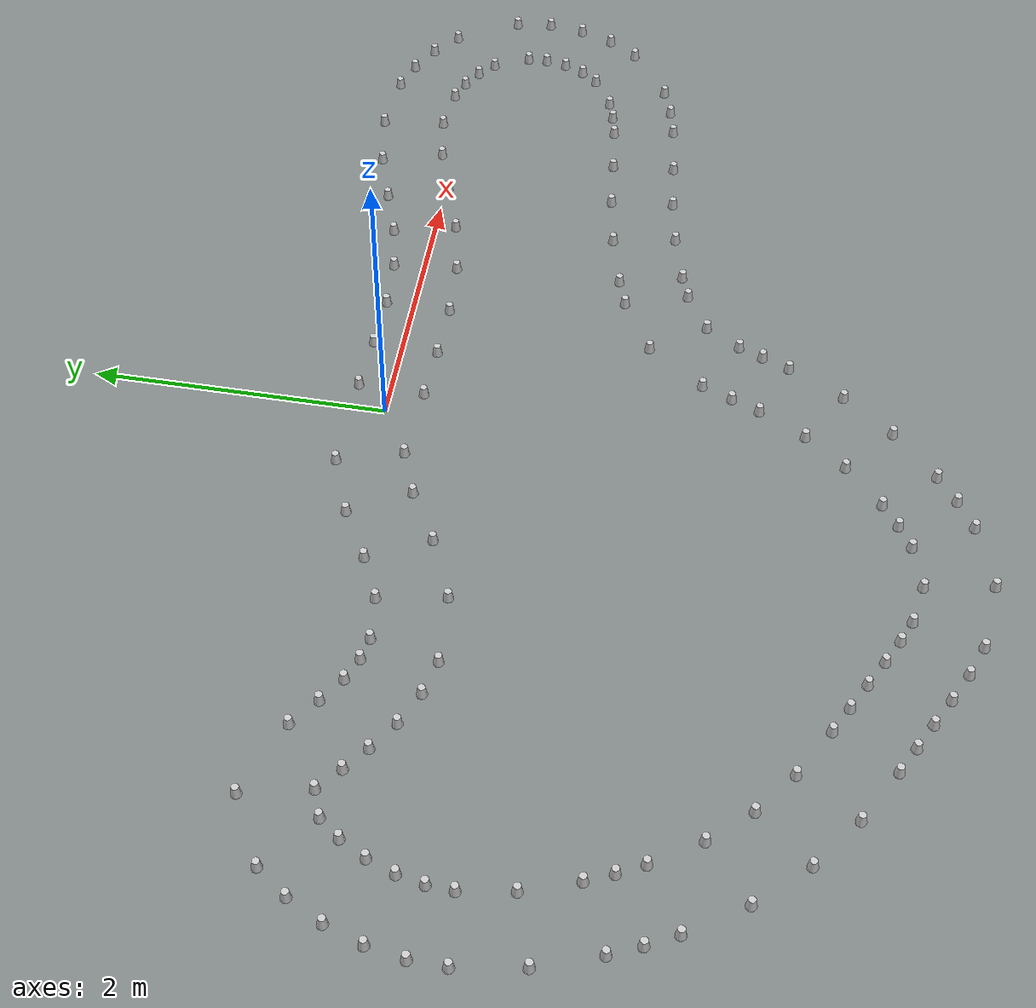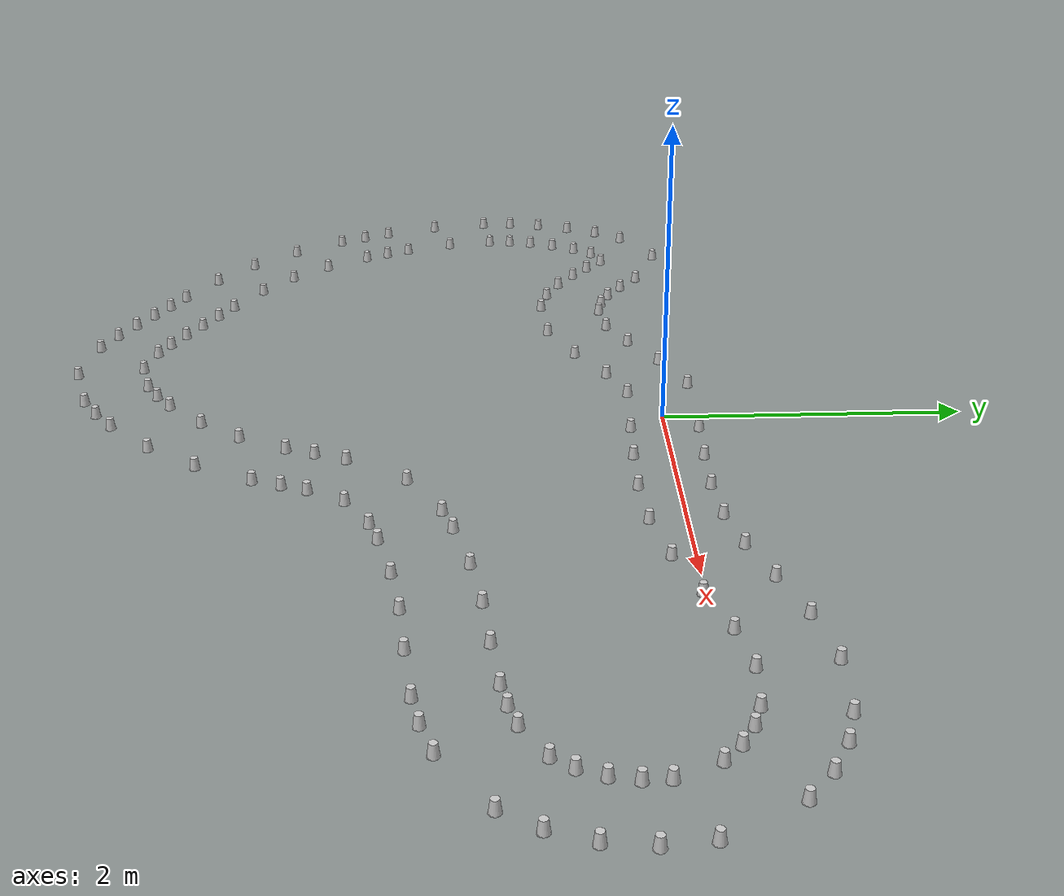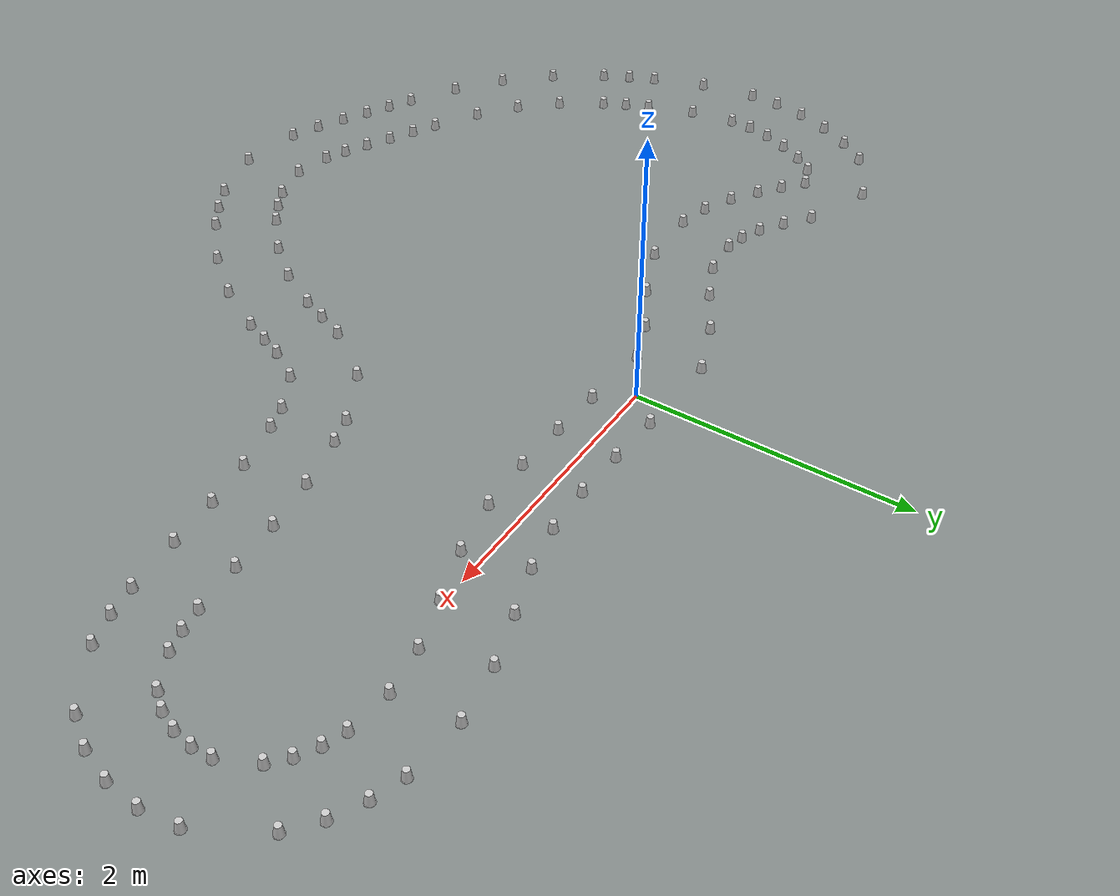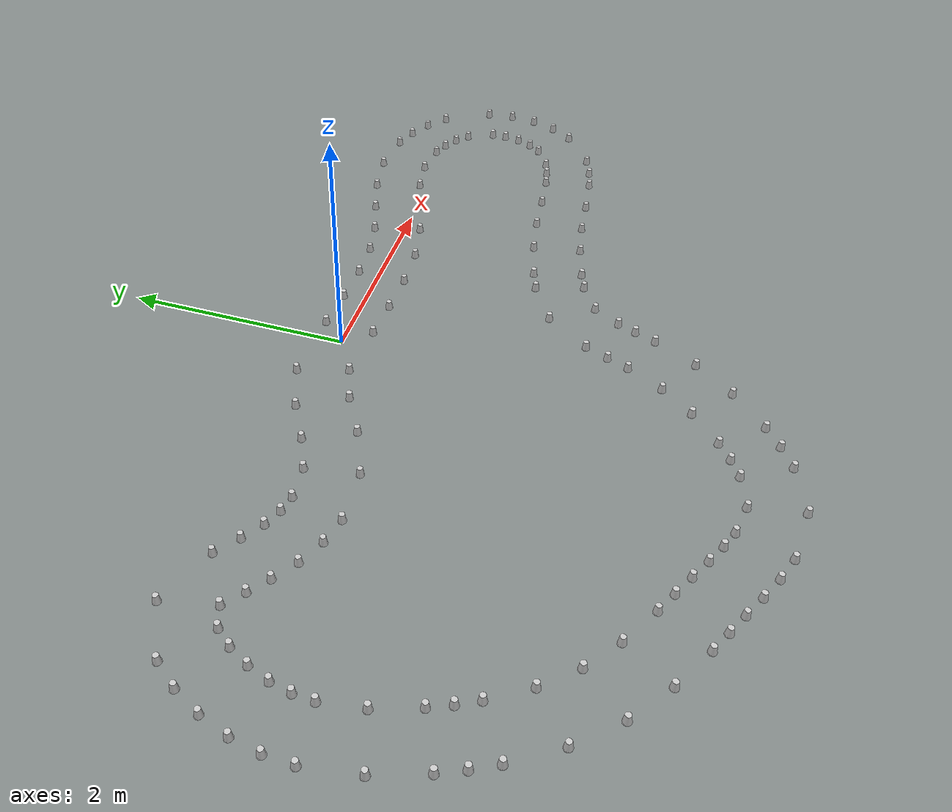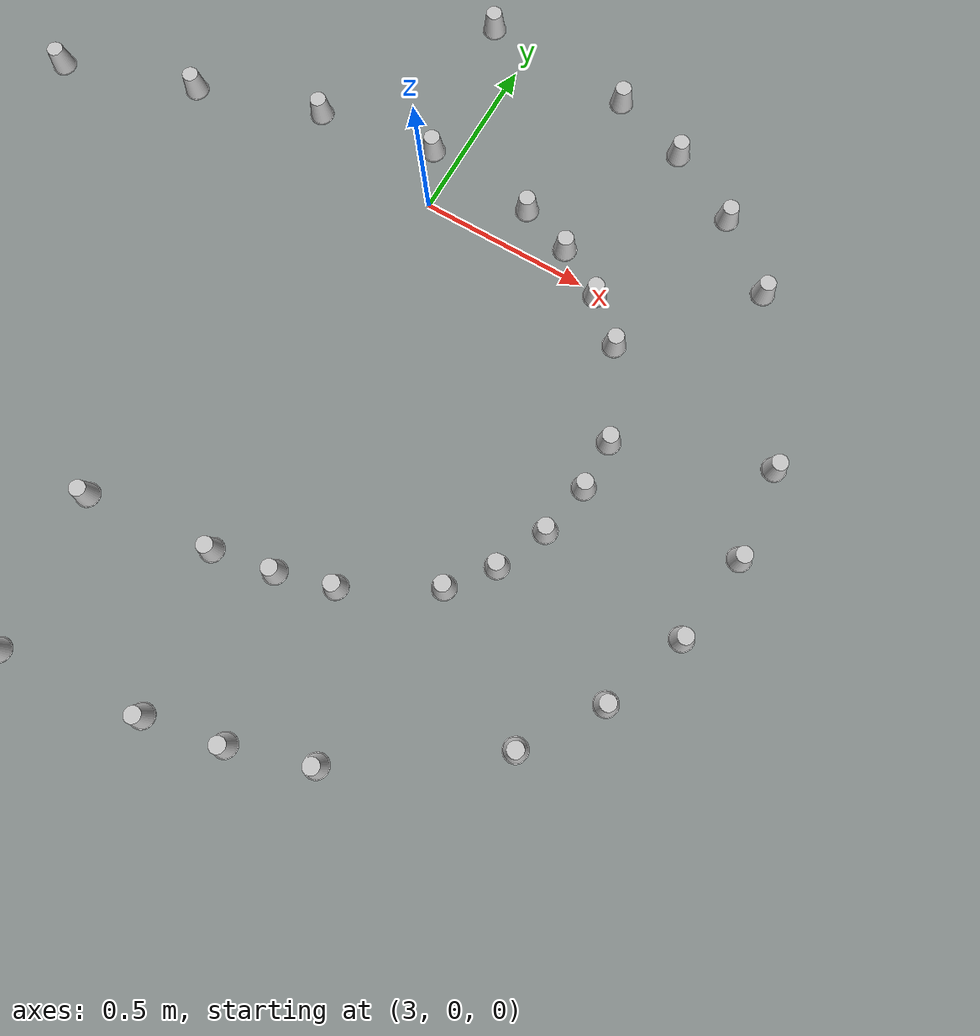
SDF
<?xml version='1.0' encoding='UTF-8'?>
<sdf version="1.4">
  <model name="some track">
    <include>
      <uri>model://cone_yellow</uri>
      <pose>0.18759496561683559 -0.2295577705024645 0 0 0 0</pose>
      <name>cone_right_0</name>
    </include>
    <include>
      <uri>model://cone_yellow</uri>
      <pose>0.5755406994430231 -0.24715566165775663 0 0 0 0</pose>
      <name>cone_right_1</name>
    </include>
    <include>
      <uri>model://cone_yellow</uri>
      <pose>0.9806962667492243 -0.2563478968572893 0 0 0 0</pose>
      <name>cone_right_2</name>
    </include>
    <include>
      <uri>model://cone_yellow</uri>
      <pose>1.3960445455198591 -0.23130570532452543 0 0 0 0</pose>
      <name>cone_right_3</name>
    </include>
    <include>
      <uri>model://cone_yellow</uri>
      <pose>1.8130392439849035 -0.14564734642981084 0 0 0 0</pose>
      <name>cone_right_4</name>
    </include>
    <include>
      <uri>model://cone_yellow</uri>
      <pose>2.2050073256570975 -0.01780907342128188 0 0 0 0</pose>
      <name>cone_right_5</name>
    </include>
    <include>
      <uri>model://cone_yellow</uri>
      <pose>2.572461905719061 0.09825327312814156 0 0 0 0</pose>
      <name>cone_right_6</name>
    </include>
    <include>
      <uri>model://cone_yellow</uri>
      <pose>2.921884154365821 0.15679220755745174 0 0 0 0</pose>
      <name>cone_right_7</name>
    </include>
    <include>
      <uri>model://cone_yellow</uri>
      <pose>3.253863643680333 0.12661593220568954 0 0 0 0</pose>
      <name>cone_right_8</name>
    </include>
    <include>
      <uri>model://cone_yellow</uri>
      <pose>3.4086567676691155 0.07257739082380055 0 0 0 0</pose>
      <name>cone_right_9</name>
    </include>
    <include>
      <uri>model://cone_yellow</uri>
      <pose>3.5510601446673378 -0.008771063536526486 0 0 0 0</pose>
      <name>cone_right_10</name>
    </include>
    <include>
      <uri>model://cone_yellow</uri>
      <pose>3.669706109846401 -0.11363125848110245 0 0 0 0</pose>
      <name>cone_right_11</name>
    </include>
    <include>
      <uri>model://cone_yellow</uri>
      <pose>3.7905768175519863 -0.3661469165338716 0 0 0 0</pose>
      <name>cone_right_12</name>
    </include>
    <include>
      <uri>model://cone_yellow</uri>
      <pose>3.7934662745545644 -0.5106587344032009 0 0 0 0</pose>
      <name>cone_right_13</name>
    </include>
    <include>
      <uri>model://cone_yellow</uri>
      <pose>3.7628093817284665 -0.6646845876896478 0 0 0 0</pose>
      <name>cone_right_14</name>
    </include>
    <include>
      <uri>model://cone_yellow</uri>
      <pose>3.6989022278244144 -0.8097610380385843 0 0 0 0</pose>
      <name>cone_right_15</name>
    </include>
    <include>
      <uri>model://cone_yellow</uri>
      <pose>3.607502140191656 -0.9266880431974815 0 0 0 0</pose>
      <name>cone_right_16</name>
    </include>
    <include>
      <uri>model://cone_yellow</uri>
      <pose>3.361550289316726 -1.0670637330290513 0 0 0 0</pose>
      <name>cone_right_17</name>
    </include>
    <include>
      <uri>model://cone_yellow</uri>
      <pose>3.2016362778648313 -1.1131931561299147 0 0 0 0</pose>
      <name>cone_right_18</name>
    </include>
    <include>
      <uri>model://cone_yellow</uri>
      <pose>3.0250245615061524 -1.1466501158364915 0 0 0 0</pose>
      <name>cone_right_19</name>
    </include>
    <include>
      <uri>model://cone_yellow</uri>
      <pose>2.653195892465553 -1.1886359233333474 0 0 0 0</pose>
      <name>cone_right_20</name>
    </include>
    <include>
      <uri>model://cone_yellow</uri>
      <pose>2.264742655169774 -1.226426585789559 0 0 0 0</pose>
      <name>cone_right_21</name>
    </include>
    <include>
      <uri>model://cone_yellow</uri>
      <pose>1.8642459210985531 -1.2919222984479573 0 0 0 0</pose>
      <name>cone_right_22</name>
    </include>
    <include>
      <uri>model://cone_yellow</uri>
      <pose>1.4585495346601527 -1.390364962683376 0 0 0 0</pose>
      <name>cone_right_23</name>
    </include>
    <include>
      <uri>model://cone_yellow</uri>
      <pose>1.2519391707382055 -1.456534247549639 0 0 0 0</pose>
      <name>cone_right_24</name>
    </include>
    <include>
      <uri>model://cone_yellow</uri>
      <pose>0.8530674147502446 -1.677472567146451 0 0 0 0</pose>
      <name>cone_right_25</name>
    </include>
    <include>
      <uri>model://cone_yellow</uri>
      <pose>0.5695348485648941 -2.0697618556441406 0 0 0 0</pose>
      <name>cone_right_26</name>
    </include>
    <include>
      <uri>model://cone_yellow</uri>
      <pose>0.48229228489300724 -2.2767508222730934 0 0 0 0</pose>
      <name>cone_right_27</name>
    </include>
    <include>
      <uri>model://cone_yellow</uri>
      <pose>0.4055245811403262 -2.467819084421946 0 0 0 0</pose>
      <name>cone_right_28</name>
    </include>
    <include>
      <uri>model://cone_yellow</uri>
      <pose>0.23409870842261024 -2.785852798613462 0 0 0 0</pose>
      <name>cone_right_29</name>
    </include>
    <include>
      <uri>model://cone_yellow</uri>
      <pose>0.014684555027909912 -3.0622947796933357 0 0 0 0</pose>
      <name>cone_right_30</name>
    </include>
    <include>
      <uri>model://cone_yellow</uri>
      <pose>-0.25761015906829404 -3.3106464889533944 0 0 0 0</pose>
      <name>cone_right_31</name>
    </include>
    <include>
      <uri>model://cone_yellow</uri>
      <pose>-0.4113365586119556 -3.4209531648550753 0 0 0 0</pose>
      <name>cone_right_32</name>
    </include>
    <include>
      <uri>model://cone_yellow</uri>
      <pose>-0.5685698978854075 -3.509587359585587 0 0 0 0</pose>
      <name>cone_right_33</name>
    </include>
    <include>
      <uri>model://cone_yellow</uri>
      <pose>-0.8672107307590486 -3.590306664515702 0 0 0 0</pose>
      <name>cone_right_34</name>
    </include>
    <include>
      <uri>model://cone_yellow</uri>
      <pose>-1.1407954211800826 -3.533884151213146 0 0 0 0</pose>
      <name>cone_right_35</name>
    </include>
    <include>
      <uri>model://cone_yellow</uri>
      <pose>-1.2970339644413253 -3.466674990566592 0 0 0 0</pose>
      <name>cone_right_36</name>
    </include>
    <include>
      <uri>model://cone_yellow</uri>
      <pose>-1.4654297697958674 -3.3806123297221737 0 0 0 0</pose>
      <name>cone_right_37</name>
    </include>
    <include>
      <uri>model://cone_yellow</uri>
      <pose>-1.643007379429277 -3.285055734616383 0 0 0 0</pose>
      <name>cone_right_38</name>
    </include>
    <include>
      <uri>model://cone_yellow</uri>
      <pose>-1.8256658042403129 -3.189173817809229 0 0 0 0</pose>
      <name>cone_right_39</name>
    </include>
    <include>
      <uri>model://cone_yellow</uri>
      <pose>-2.0031192899324197 -3.096013919526344 0 0 0 0</pose>
      <name>cone_right_40</name>
    </include>
    <include>
      <uri>model://cone_yellow</uri>
      <pose>-2.3297685382207534 -2.907019947571384 0 0 0 0</pose>
      <name>cone_right_41</name>
    </include>
    <include>
      <uri>model://cone_yellow</uri>
      <pose>-2.6088260613969276 -2.693689364624836 0 0 0 0</pose>
      <name>cone_right_42</name>
    </include>
    <include>
      <uri>model://cone_yellow</uri>
      <pose>-2.842129954373061 -2.4343926598012127 0 0 0 0</pose>
      <name>cone_right_43</name>
    </include>
    <include>
      <uri>model://cone_yellow</uri>
      <pose>-3.0407620580994594 -2.128346645440999 0 0 0 0</pose>
      <name>cone_right_44</name>
    </include>
    <include>
      <uri>model://cone_yellow</uri>
      <pose>-3.1263562272483565 -1.962773016002839 0 0 0 0</pose>
      <name>cone_right_45</name>
    </include>
    <include>
      <uri>model://cone_yellow</uri>
      <pose>-3.202432167389195 -1.7918125163596677 0 0 0 0</pose>
      <name>cone_right_46</name>
    </include>
    <include>
      <uri>model://cone_yellow</uri>
      <pose>-3.3236907363443122 -1.443643577502309 0 0 0 0</pose>
      <name>cone_right_47</name>
    </include>
    <include>
      <uri>model://cone_yellow</uri>
      <pose>-3.377727194365248 -1.1047700911098044 0 0 0 0</pose>
      <name>cone_right_48</name>
    </include>
    <include>
      <uri>model://cone_yellow</uri>
      <pose>-3.369743960395825 -0.9357036574660988 0 0 0 0</pose>
      <name>cone_right_49</name>
    </include>
    <include>
      <uri>model://cone_yellow</uri>
      <pose>-3.333770674375935 -0.7608429703029672 0 0 0 0</pose>
      <name>cone_right_50</name>
    </include>
    <include>
      <uri>model://cone_yellow</uri>
      <pose>-3.26647112138034 -0.5776766159917631 0 0 0 0</pose>
      <name>cone_right_51</name>
    </include>
    <include>
      <uri>model://cone_yellow</uri>
      <pose>-3.17212979538666 -0.4029788001066358 0 0 0 0</pose>
      <name>cone_right_52</name>
    </include>
    <include>
      <uri>model://cone_yellow</uri>
      <pose>-3.06181487873271 -0.2649020388767531 0 0 0 0</pose>
      <name>cone_right_53</name>
    </include>
    <include>
      <uri>model://cone_yellow</uri>
      <pose>-2.8854186033931466 -0.19661103516612616 0 0 0 0</pose>
      <name>cone_right_54</name>
    </include>
    <include>
      <uri>model://cone_yellow</uri>
      <pose>-2.7305872703543774 -0.3237953627069493 0 0 0 0</pose>
      <name>cone_right_55</name>
    </include>
    <include>
      <uri>model://cone_yellow</uri>
      <pose>-2.5705528973160945 -0.44537436494745297 0 0 0 0</pose>
      <name>cone_right_56</name>
    </include>
    <include>
      <uri>model://cone_yellow</uri>
      <pose>-2.376347463802229 -0.5740649515490788 0 0 0 0</pose>
      <name>cone_right_57</name>
    </include>
    <include>
      <uri>model://cone_yellow</uri>
      <pose>-2.1494759475290213 -0.6757478116295788 0 0 0 0</pose>
      <name>cone_right_58</name>
    </include>
    <include>
      <uri>model://cone_yellow</uri>
      <pose>-1.9100482593670536 -0.7312472269166631 0 0 0 0</pose>
      <name>cone_right_59</name>
    </include>
    <include>
      <uri>model://cone_yellow</uri>
      <pose>-1.4356258160646547 -0.7010946896951586 0 0 0 0</pose>
      <name>cone_right_60</name>
    </include>
    <include>
      <uri>model://cone_yellow</uri>
      <pose>-1.0164442498454753 -0.523877880661961 0 0 0 0</pose>
      <name>cone_right_61</name>
    </include>
    <include>
      <uri>model://cone_yellow</uri>
      <pose>-0.6624722798295359 -0.3238088522318391 0 0 0 0</pose>
      <name>cone_right_62</name>
    </include>
    <include>
      <uri>model://cone_yellow</uri>
      <pose>-0.34300768559030226 -0.2028660881449444 0 0 0 0</pose>
      <name>cone_right_63</name>
    </include>
    <include>
      <uri>model://cone_blue</uri>
      <pose>0.19837019148695528 0.22031320489764716 0 0 0 0</pose>
      <name>cone_left_0</name>
    </include>
    <include>
      <uri>model://cone_blue</uri>
      <pose>0.5967188526220045 0.20234571300969376 0 0 0 0</pose>
      <name>cone_left_1</name>
    </include>
    <include>
      <uri>model://cone_blue</uri>
      <pose>0.9849087403418444 0.1936323861176778 0 0 0 0</pose>
      <name>cone_left_2</name>
    </include>
    <include>
      <uri>model://cone_blue</uri>
      <pose>1.3554357195339704 0.21685824152087602 0 0 0 0</pose>
      <name>cone_left_3</name>
    </include>
    <include>
      <uri>model://cone_blue</uri>
      <pose>1.7032026890185128 0.2907423088017438 0 0 0 0</pose>
      <name>cone_left_4</name>
    </include>
    <include>
      <uri>model://cone_blue</uri>
      <pose>2.0594550083500587 0.4080013573182094 0 0 0 0</pose>
      <name>cone_left_5</name>
    </include>
    <include>
      <uri>model://cone_blue</uri>
      <pose>2.4447183714587197 0.5297409200598666 0 0 0 0</pose>
      <name>cone_left_6</name>
    </include>
    <include>
      <uri>model://cone_blue</uri>
      <pose>2.8682207633535253 0.603581017248408 0 0 0 0</pose>
      <name>cone_left_7</name>
    </include>
    <include>
      <uri>model://cone_blue</uri>
      <pose>3.3218870826789946 0.5714449013014481 0 0 0 0</pose>
      <name>cone_left_8</name>
    </include>
    <include>
      <uri>model://cone_blue</uri>
      <pose>3.548991405895973 0.5001357953882963 0 0 0 0</pose>
      <name>cone_left_9</name>
    </include>
    <include>
      <uri>model://cone_blue</uri>
      <pose>3.7655785792543086 0.38680679380935123 0 0 0 0</pose>
      <name>cone_left_10</name>
    </include>
    <include>
      <uri>model://cone_blue</uri>
      <pose>3.9581504345574974 0.23176687634588167 0 0 0 0</pose>
      <name>cone_left_11</name>
    </include>
    <include>
      <uri>model://cone_blue</uri>
      <pose>4.212750511976098 -0.21036061502986553 0 0 0 0</pose>
      <name>cone_left_12</name>
    </include>
    <include>
      <uri>model://cone_blue</uri>
      <pose>4.2420799822077395 -0.47536367376192284 0 0 0 0</pose>
      <name>cone_left_13</name>
    </include>
    <include>
      <uri>model://cone_blue</uri>
      <pose>4.207279521359444 -0.7350144887020843 0 0 0 0</pose>
      <name>cone_left_14</name>
    </include>
    <include>
      <uri>model://cone_blue</uri>
      <pose>4.1168319828563895 -0.976598443493455 0 0 0 0</pose>
      <name>cone_left_15</name>
    </include>
    <include>
      <uri>model://cone_blue</uri>
      <pose>3.9737590131657576 -1.1881376616696309 0 0 0 0</pose>
      <name>cone_left_16</name>
    </include>
    <include>
      <uri>model://cone_blue</uri>
      <pose>3.560695117400932 -1.470599775344124 0 0 0 0</pose>
      <name>cone_left_17</name>
    </include>
    <include>
      <uri>model://cone_blue</uri>
      <pose>3.333831610804987 -1.5433377759368363 0 0 0 0</pose>
      <name>cone_left_18</name>
    </include>
    <include>
      <uri>model://cone_blue</uri>
      <pose>3.111779636801861 -1.5882082172347511 0 0 0 0</pose>
      <name>cone_left_19</name>
    </include>
    <include>
      <uri>model://cone_blue</uri>
      <pose>2.6965542619306673 -1.6365422213436867 0 0 0 0</pose>
      <name>cone_left_20</name>
    </include>
    <include>
      <uri>model://cone_blue</uri>
      <pose>2.3124638264234822 -1.6738890868040848 0 0 0 0</pose>
      <name>cone_left_21</name>
    </include>
    <include>
      <uri>model://cone_blue</uri>
      <pose>1.9457984033432802 -1.734470818544594 0 0 0 0</pose>
      <name>cone_left_22</name>
    </include>
    <include>
      <uri>model://cone_blue</uri>
      <pose>1.5729231152559304 -1.825587531102916 0 0 0 0</pose>
      <name>cone_left_23</name>
    </include>
    <include>
      <uri>model://cone_blue</uri>
      <pose>1.3898494731332223 -1.8848807760675146 0 0 0 0</pose>
      <name>cone_left_24</name>
    </include>
    <include>
      <uri>model://cone_blue</uri>
      <pose>1.110400917314667 -2.0466330586104298 0 0 0 0</pose>
      <name>cone_left_25</name>
    </include>
    <include>
      <uri>model://cone_blue</uri>
      <pose>0.9652939018235582 -2.283945822746736 0 0 0 0</pose>
      <name>cone_left_26</name>
    </include>
    <include>
      <uri>model://cone_blue</uri>
      <pose>0.8978759099276793 -2.449349346609315 0 0 0 0</pose>
      <name>cone_left_27</name>
    </include>
    <include>
      <uri>model://cone_blue</uri>
      <pose>0.8230945696336455 -2.635554902629296 0 0 0 0</pose>
      <name>cone_left_28</name>
    </include>
    <include>
      <uri>model://cone_blue</uri>
      <pose>0.6210820054974002 -3.0155132605678974 0 0 0 0</pose>
      <name>cone_left_29</name>
    </include>
    <include>
      <uri>model://cone_blue</uri>
      <pose>0.35636975498730306 -3.3551278791351673 0 0 0 0</pose>
      <name>cone_left_30</name>
    </include>
    <include>
      <uri>model://cone_blue</uri>
      <pose>0.0344039739266645 -3.653031865585053 0 0 0 0</pose>
      <name>cone_left_31</name>
    </include>
    <include>
      <uri>model://cone_blue</uri>
      <pose>-0.14760209964624996 -3.7855682154962498 0 0 0 0</pose>
      <name>cone_left_32</name>
    </include>
    <include>
      <uri>model://cone_blue</uri>
      <pose>-0.34485886171938224 -3.9000401381613363 0 0 0 0</pose>
      <name>cone_left_33</name>
    </include>
    <include>
      <uri>model://cone_blue</uri>
      <pose>-0.7858177957436405 -4.032884556111721 0 0 0 0</pose>
      <name>cone_left_34</name>
    </include>
    <include>
      <uri>model://cone_blue</uri>
      <pose>-1.2566290782839173 -3.9687204007162795 0 0 0 0</pose>
      <name>cone_left_35</name>
    </include>
    <include>
      <uri>model://cone_blue</uri>
      <pose>-1.4699383032794788 -3.882131473980849 0 0 0 0</pose>
      <name>cone_left_36</name>
    </include>
    <include>
      <uri>model://cone_blue</uri>
      <pose>-1.6688848046716411 -3.7819925095812414 0 0 0 0</pose>
      <name>cone_left_37</name>
    </include>
    <include>
      <uri>model://cone_blue</uri>
      <pose>-1.856115356053431 -3.6813952233115663 0 0 0 0</pose>
      <name>cone_left_38</name>
    </include>
    <include>
      <uri>model://cone_blue</uri>
      <pose>-2.0347957623553934 -3.587626651427946 0 0 0 0</pose>
      <name>cone_left_39</name>
    </include>
    <include>
      <uri>model://cone_blue</uri>
      <pose>-2.212288941997763 -3.494445917055236 0 0 0 0</pose>
      <name>cone_left_40</name>
    </include>
    <include>
      <uri>model://cone_blue</uri>
      <pose>-2.563038975796943 -3.291837960342373 0 0 0 0</pose>
      <name>cone_left_41</name>
    </include>
    <include>
      <uri>model://cone_blue</uri>
      <pose>-2.8958607708795383 -3.0402598128056253 0 0 0 0</pose>
      <name>cone_left_42</name>
    </include>
    <include>
      <uri>model://cone_blue</uri>
      <pose>-3.187943060153493 -2.722339349086732 0 0 0 0</pose>
      <name>cone_left_43</name>
    </include>
    <include>
      <uri>model://cone_blue</uri>
      <pose>-3.425814143789597 -2.3612305034167607 0 0 0 0</pose>
      <name>cone_left_44</name>
    </include>
    <include>
      <uri>model://cone_blue</uri>
      <pose>-3.52558353256984 -2.1704206952235503 0 0 0 0</pose>
      <name>cone_left_45</name>
    </include>
    <include>
      <uri>model://cone_blue</uri>
      <pose>-3.6131821064331264 -1.9756180863933488 0 0 0 0</pose>
      <name>cone_left_46</name>
    </include>
    <include>
      <uri>model://cone_blue</uri>
      <pose>-3.7525858019461604 -1.5798383744014066 0 0 0 0</pose>
      <name>cone_left_47</name>
    </include>
    <include>
      <uri>model://cone_blue</uri>
      <pose>-3.8251979966942433 -1.1524133599213076 0 0 0 0</pose>
      <name>cone_left_48</name>
    </include>
    <include>
      <uri>model://cone_blue</uri>
      <pose>-3.8194817631728784 -0.9203443360856407 0 0 0 0</pose>
      <name>cone_left_49</name>
    </include>
    <include>
      <uri>model://cone_blue</uri>
      <pose>-3.775841302399664 -0.6767385124026514 0 0 0 0</pose>
      <name>cone_left_50</name>
    </include>
    <include>
      <uri>model://cone_blue</uri>
      <pose>-3.6908616358252826 -0.4280347393356717 0 0 0 0</pose>
      <name>cone_left_51</name>
    </include>
    <include>
      <uri>model://cone_blue</uri>
      <pose>-3.5705763431356554 -0.19383686603575823 0 0 0 0</pose>
      <name>cone_left_52</name>
    </include>
    <include>
      <uri>model://cone_blue</uri>
      <pose>-3.4185994694540818 0.0093328163546402 0 0 0 0</pose>
      <name>cone_left_53</name>
    </include>
    <include>
      <uri>model://cone_blue</uri>
      <pose>-2.9861313751999985 0.24197411915966827 0 0 0 0</pose>
      <name>cone_left_54</name>
    </include>
    <include>
      <uri>model://cone_blue</uri>
      <pose>-2.486297630551372 0.05412337443758275 0 0 0 0</pose>
      <name>cone_left_55</name>
    </include>
    <include>
      <uri>model://cone_blue</uri>
      <pose>-2.299398019724742 -0.08624342453933553 0 0 0 0</pose>
      <name>cone_left_56</name>
    </include>
    <include>
      <uri>model://cone_blue</uri>
      <pose>-2.1285051655358758 -0.19846650215125156 0 0 0 0</pose>
      <name>cone_left_57</name>
    </include>
    <include>
      <uri>model://cone_blue</uri>
      <pose>-1.971179704962923 -0.2625766002815335 0 0 0 0</pose>
      <name>cone_left_58</name>
    </include>
    <include>
      <uri>model://cone_blue</uri>
      <pose>-1.8162413277382352 -0.29113331032416745 0 0 0 0</pose>
      <name>cone_left_59</name>
    </include>
    <include>
      <uri>model://cone_blue</uri>
      <pose>-1.515542588243277 -0.25824786569779706 0 0 0 0</pose>
      <name>cone_left_60</name>
    </include>
    <include>
      <uri>model://cone_blue</uri>
      <pose>-1.2202224929974372 -0.12266169502396881 0 0 0 0</pose>
      <name>cone_left_61</name>
    </include>
    <include>
      <uri>model://cone_blue</uri>
      <pose>-0.8819454254567332 0.06904167703915876 0 0 0 0</pose>
      <name>cone_left_62</name>
    </include>
    <include>
      <uri>model://cone_blue</uri>
      <pose>-0.4747442305731696 0.22741926219361525 0 0 0 0</pose>
      <name>cone_left_63</name>
    </include>

  </model>
</sdf>

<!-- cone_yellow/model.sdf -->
<sdf version='1.4'>
  <model name="cone_yellow">
    <link name="link">
    <collision name="collision"><geometry><box><size> 0.05 0.05 0.01</size>
             </box></geometry></collision>
      <visual name="visual">
        <geometry>
          <mesh>
            <uri>model://cup.dae</uri>
            <scale>1 1 1</scale>
          </mesh>
        </geometry>
        <material>
            <script>
              <uri>model://cone_yellow/materials/scripts</uri>
              <uri>model://cone_yellow/materials/textures</uri>
              <name>cone_yellow/Image</name>
            </script>
        </material>
      </visual>
    </link>
  </model>
</sdf>

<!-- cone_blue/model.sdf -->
<sdf version='1.4'>
  <model name="cone_blue">
    <link name="link">
    <collision name="collision"><geometry><box><size> 0.05 0.05 0.01</size>
             </box></geometry></collision>
      <visual name="visual">
        <geometry>
          <mesh>
            <uri>model://cup.dae</uri>
            <scale>1 1 1</scale>
          </mesh>
        </geometry>
        <material>
            <script>
              <uri>model://cone_blue/materials/scripts</uri>
              <uri>model://cone_blue/materials/textures</uri>
              <name>cone_blue/Image</name>
            </script>
        </material>
      </visual>
    </link>
  </model>
</sdf>
